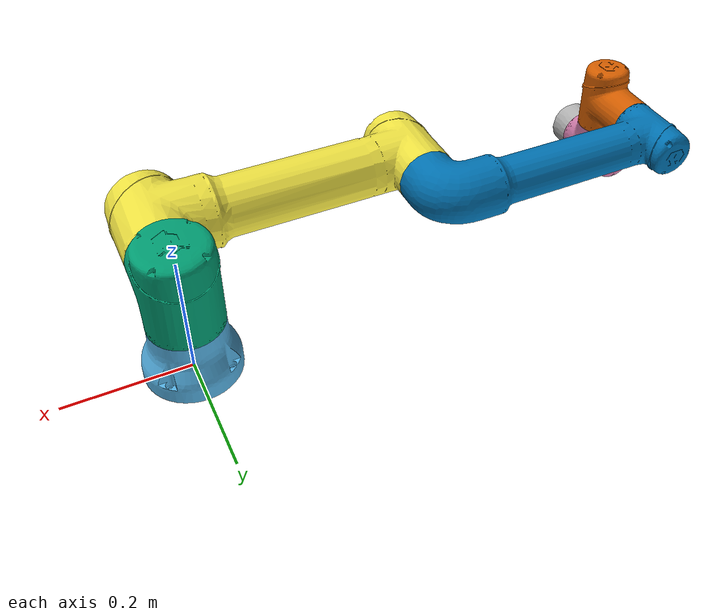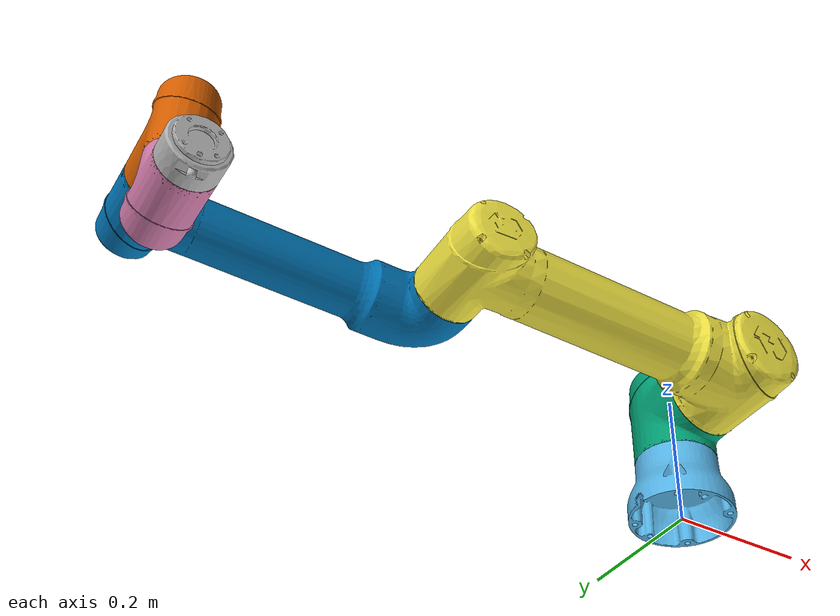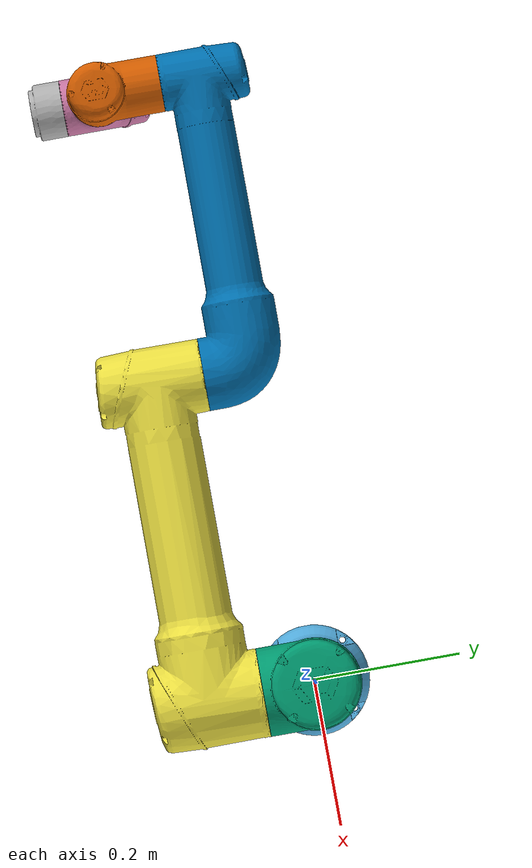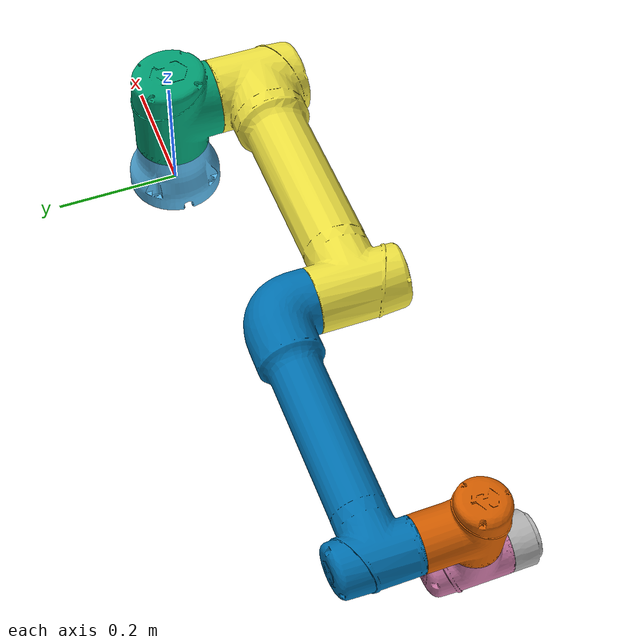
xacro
<?xml version="1.0"?>
<robot xmlns:xacro="http://www.ros.org/wiki/xacro" name="cs66_robot">
    <xacro:arg name="initial_positions_file" default="initial_positions.yaml" />

    <!-- Import cs66_robot urdf file -->
    <xacro:include filename="$(find elite_robot_description)/urdf/robot.urdf.xacro" />

    <!-- Import control_xacro -->
    <xacro:include filename="cs66_robot.ros2_control.xacro" />

    <xacro:cs66_robot_ros2_control name="FakeSystem" initial_positions_file="$(arg initial_positions_file)"/>

</robot>

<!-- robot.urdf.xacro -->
<robot xmlns:xacro="http://ros.org/wiki/xacro" name="cs66_robot">
    <xacro:arg name="robot_model" default="cs66"/>

    <xacro:include filename="$(find elite_robot_description)/urdf/$(arg robot_model)_macro.urdf.xacro"/>
    <xacro:include filename="$(find elite_robot_description)/urdf/$(arg robot_model)_gazebo.urdf.xacro"/>
    <xacro:include filename="$(find elite_robot_description)/urdf/$(arg robot_model)_ros2_control.urdf.xacro"/>

    <link name="world" />

    <xacro:arg name="robot_ip" default="127.0.0.1"/>
    <xacro:arg name="dashboard_port" default="29999"/>
    <xacro:arg name="controller_port" default="30001"/>
    <xacro:arg name="rtsi_port" default="30004"/>

    <xacro:insert_robot
        prefix=""
        model="cs66"
        parent="world"
        robot_ip="$(arg robot_ip)"
        dashboard_port="$(arg dashboard_port)"
        controller_port="$(arg controller_port)"
        rtsi_port="$(arg rtsi_port)"
    >
        <origin xyz="0 0 0" rpy="0 0 0"/>
    </xacro:insert_robot>
</robot>

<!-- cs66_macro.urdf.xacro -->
<robot xmlns:xacro="http://www.ros.org/wiki/xacro">
    <xacro:macro name="insert_robot" params="prefix model parent *origin">
        <link name="${prefix}base_link">
            <visual>
                <origin xyz="0 0 0" rpy="0 0 0"/>
                <geometry>
                    <mesh filename="package://elite_robot_description/meshes/${model}/visual/base.dae" scale="1 1 1"/>
                </geometry>
            </visual>
            <collision>
                <origin xyz="0 0 0" rpy="0 0 0"/>
                <geometry>
                    <mesh filename="package://elite_robot_description/meshes/${model}/collison/base.stl" scale="1 1 1"/>
                </geometry>
            </collision>
            <inertial>
                <origin xyz="0 0 0" rpy="0 0 0.042"/>
                <mass value="1.753476"/>
                <inertia ixx="0.003313" ixy="0" ixz="0" iyy="0.003312" iyz="0" izz="0.004254"/>
            </inertial>
        </link>

        <joint name="base_link_fixed_joint" type="fixed">
            <parent link="${parent}"/>
            <child link="${prefix}base_link"/>
            <xacro:insert_block name="origin" />
        </joint>

        <link name="${prefix}link1">
            <visual>
                <origin xyz="0 0 0" rpy="0 0 0"/>
                <geometry>
                    <mesh filename="package://elite_robot_description/meshes/${model}/visual/link1.dae" scale="1 1 1"/>
                </geometry>
            </visual>
            <collision>
                <origin xyz="0 0 0" rpy="0 0 0"/>
                <geometry>
                    <mesh filename="package://elite_robot_description/meshes/${model}/collison/link1.stl" scale="1 1 1"/>
                </geometry>
            </collision>
            <inertial>
                <origin xyz="0 -0.009 0.072" rpy="0 0 0"/>
                <mass value="2.431303"/>
                <inertia ixx="0.006723" ixy="0" ixz="0.000001" iyy="0.006327" iyz="0.000046" izz="0.005198"/>
            </inertial>
        </link>

        <joint name="${prefix}joint1" type="revolute">
            <parent link="${prefix}base_link"/>
            <child link="${prefix}link1"/>
            <origin xyz="0 0 0.0919" rpy="0 0 0"/>
            <axis xyz="0 0 1"/>
            <limit effort="1000" velocity="1.0" lower="${-pi}" upper="${pi}"/>
            <safety_controller k_position="100.0" k_velocity="40.0" soft_lower_limit="${-pi}" soft_upper_limit="${pi}" />
        </joint>

        <link name="${prefix}link2">
            <visual>
                <origin xyz="0 0 0" rpy="0 0 0"/>
                <geometry>
                    <mesh filename="package://elite_robot_description/meshes/${model}/visual/link2.dae" scale="1 1 1"/>
                </geometry>
            </visual>
            <collision>
                <origin xyz="0 0 0" rpy="0 0 0"/>
                <geometry>
                    <mesh filename="package://elite_robot_description/meshes/${model}/collison/link2.stl" scale="1 1 1"/>
                </geometry>
            </collision>
            <inertial>
                <origin xyz="0.199 0.073 0.000" rpy="0 0 0"/>
                <mass value="10.308232"/>
                <inertia ixx="0.027417" ixy="-0.000970" ixz="0.000007" iyy="0.233058" iyz="0" izz="0.240741"/>
            </inertial>
        </link>

        <joint name="${prefix}joint2" type="revolute">
            <parent link="${prefix}link1"/>
            <child link="${prefix}link2"/>
            <origin xyz="0 -0.0704 0.0706" rpy="0 0 ${pi}"/>
            <axis xyz="0 1 0"/>
            <limit effort="1000" velocity="1.0" lower="${-pi}" upper="${pi}"/>
            <safety_controller k_position="100.0" k_velocity="40.0" soft_lower_limit="${-pi}" soft_upper_limit="${pi}" />
        </joint>

        <link name="${prefix}link3">
            <visual>
                <origin xyz="0 0 0" rpy="0 0 0"/>
                <geometry>
                    <mesh filename="package://elite_robot_description/meshes/${model}/visual/link3.dae" scale="1 1 1"/>
                </geometry>
            </visual>
            <collision>
                <origin xyz="0 0 0" rpy="0 0 0"/>
                <geometry>
                    <mesh filename="package://elite_robot_description/meshes/${model}/collison/link3.stl" scale="1 1 1"/>
                </geometry>
            </collision>
            <inertial>
                <origin xyz="0.194 -0.058 0.000" rpy="0 0 0"/>
                <mass value="5.342591"/>
                <inertia ixx="0.008507" ixy="0.005298" ixz="0.000001" iyy="0.092157" iyz="0" izz="0.094359"/>
            </inertial>
        </link>

        <joint name="${prefix}joint3" type="revolute">
            <parent link="${prefix}link2"/>
            <child link="${prefix}link3"/>
            <origin xyz="0.427 0.0034 0" rpy="0 0 0"/>
            <axis xyz="0 1 0"/>
            <limit effort="1000" velocity="1.0" lower="${-pi}" upper="${pi}"/>
            <safety_controller k_position="100.0" k_velocity="40.0" soft_lower_limit="${-pi}" soft_upper_limit="${pi}" />
        </joint>

        <link name="${prefix}link4">
            <visual>
                <origin xyz="0 0 0" rpy="0 0 0"/>
                <geometry>
                    <mesh filename="package://elite_robot_description/meshes/${model}/visual/link4.dae" scale="1 1 1"/>
                </geometry>
            </visual>
            <collision>
                <origin xyz="0 0 0" rpy="0 0 0"/>
                <geometry>
                    <mesh filename="package://elite_robot_description/meshes/${model}/collison/link4.stl" scale="1 1 1"/>
                </geometry>
            </collision>
            <inertial>
                <origin xyz="0 0.064 0.006" rpy="0 0 0"/>
                <mass value="1.119554"/>
                <inertia ixx="0.002172" ixy="0" ixz="0" iyy="0.001469" iyz="-0.000062" izz="0.001640"/>
            </inertial>
        </link>

        <joint name="${prefix}joint4" type="revolute">
            <parent link="${prefix}link3"/>
            <child link="${prefix}link4"/>
            <origin xyz="0.3905 -0.0118 0" rpy="0 0 0"/>
            <axis xyz="0 1 0"/>
            <limit effort="1000" velocity="1.0" lower="${-pi}" upper="${pi}"/>
            <safety_controller k_position="100.0" k_velocity="40.0" soft_lower_limit="${-pi}" soft_upper_limit="${pi}" />
        </joint>

        <link name="${prefix}link5">
            <visual>
                <origin xyz="0 0 0" rpy="0 0 0"/>
                <geometry>
                    <mesh filename="package://elite_robot_description/meshes/${model}/visual/link5.dae" scale="1 1 1"/>
                </geometry>
            </visual>
            <collision>
                <origin xyz="0 0 0" rpy="0 0 0"/>
                <geometry>
                    <mesh filename="package://elite_robot_description/meshes/${model}/collison/link5.stl" scale="1 1 1"/>
                </geometry>
            </collision>
            <inertial>
                <origin xyz="0 -0.006 0.042" rpy="0 0 0"/>
                <mass value="0.801370"/>
                <inertia ixx="0.001175" ixy="0" ixz="0" iyy="0.000723" iyz="0.000009" izz="0.001108"/>
            </inertial>
        </link>

        <joint name="${prefix}joint5" type="revolute">
            <parent link="${prefix}link4"/>
            <child link="${prefix}link5"/>
            <origin xyz="0 0.0855 -0.049" rpy="0 ${pi} 0"/>
            <axis xyz="0 0 1"/>
            <limit effort="1000" velocity="1.0" lower="${-pi}" upper="${pi}"/>
            <safety_controller k_position="100.0" k_velocity="40.0" soft_lower_limit="${-pi}" soft_upper_limit="${pi}" />
        </joint>

        <link name="${prefix}link6">
            <visual>
                <origin xyz="0 0 0" rpy="0 0 0"/>
                <geometry>
                    <mesh filename="package://elite_robot_description/meshes/${model}/visual/link6.dae" scale="1 1 1"/>
                </geometry>
            </visual>
            <collision>
                <origin xyz="0 0 0" rpy="0 0 0"/>
                <geometry>
                    <mesh filename="package://elite_robot_description/meshes/${model}/collison/link6.stl" scale="1 1 1"/>
                </geometry>
            </collision>
            <inertial>
                <origin xyz="0 0.021 0.001" rpy="0 0 0"/>
                <mass value="0.243472"/>
                <inertia ixx="0.000124" ixy="0" ixz="0" iyy="0.000173" iyz="0" izz="0.000119"/>
            </inertial>
        </link>

        <joint name="${prefix}joint6" type="revolute">
            <parent link="${prefix}link5"/>
            <child link="${prefix}link6"/>
            <origin xyz="0 0.049 0.0475" rpy="0 0 0"/>
            <axis xyz="0 1 0"/>
            <limit effort="1000" velocity="1.0" lower="${-pi}" upper="${pi}"/>
            <safety_controller k_position="100.0" k_velocity="40.0" soft_lower_limit="${-pi}" soft_upper_limit="${pi}" />
        </joint>

        <link name="${prefix}tool"/>

        <joint name="${prefix}tool_fixed_joint" type="fixed">
            <parent link="${prefix}link6"/>
            <child link="${prefix}tool"/>
            <origin xyz="0 0.043 0" rpy="${-pi/2} 0 0"/>
        </joint>
    </xacro:macro>
</robot>
